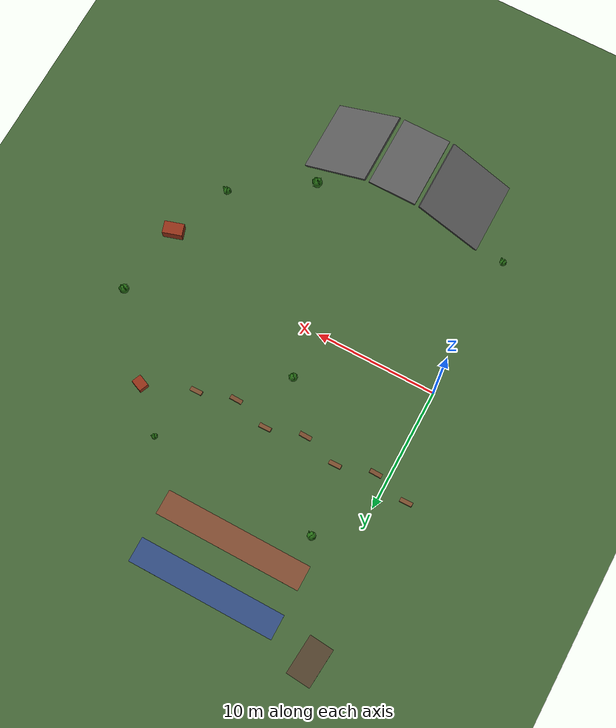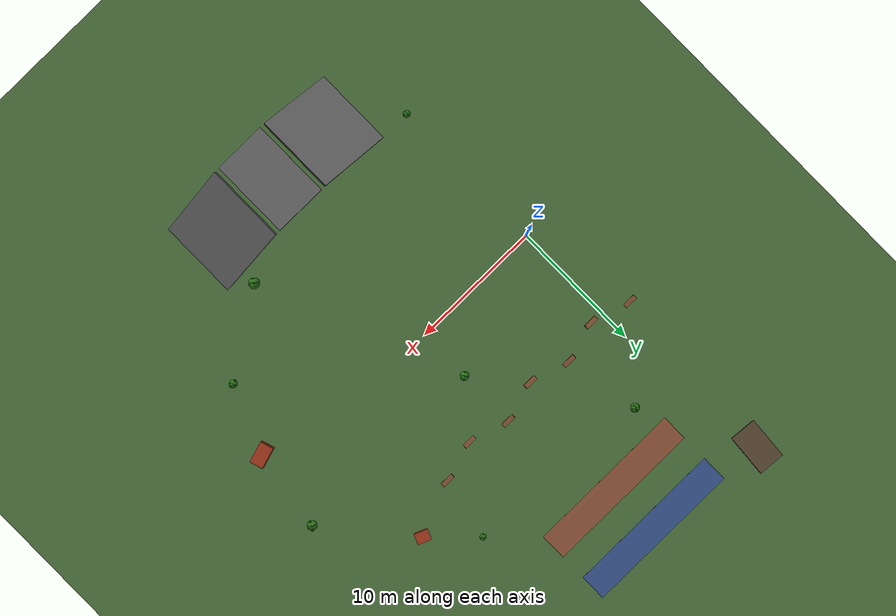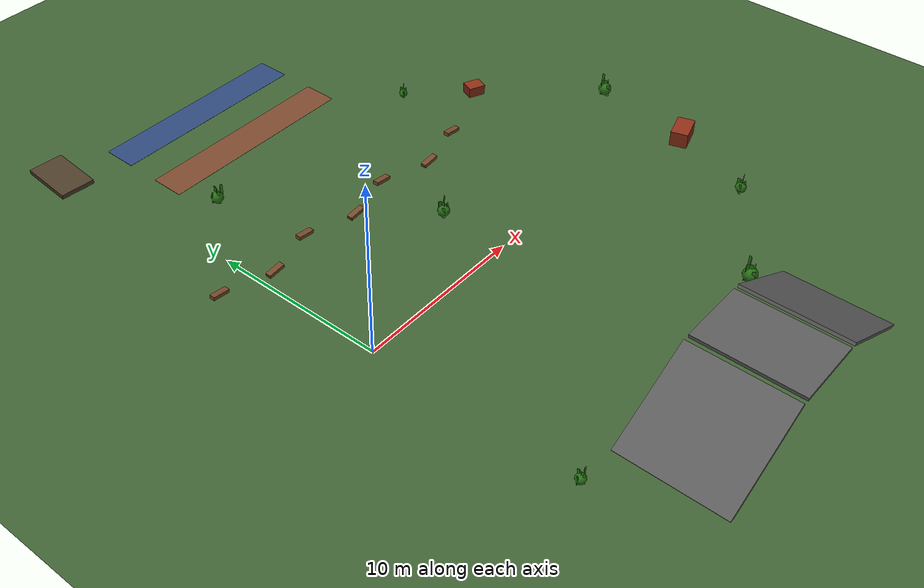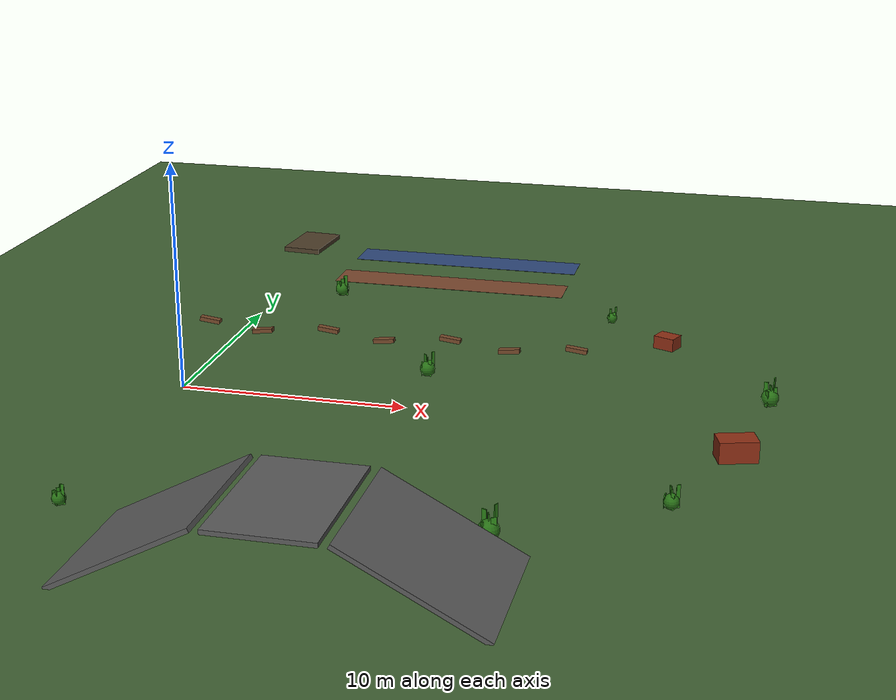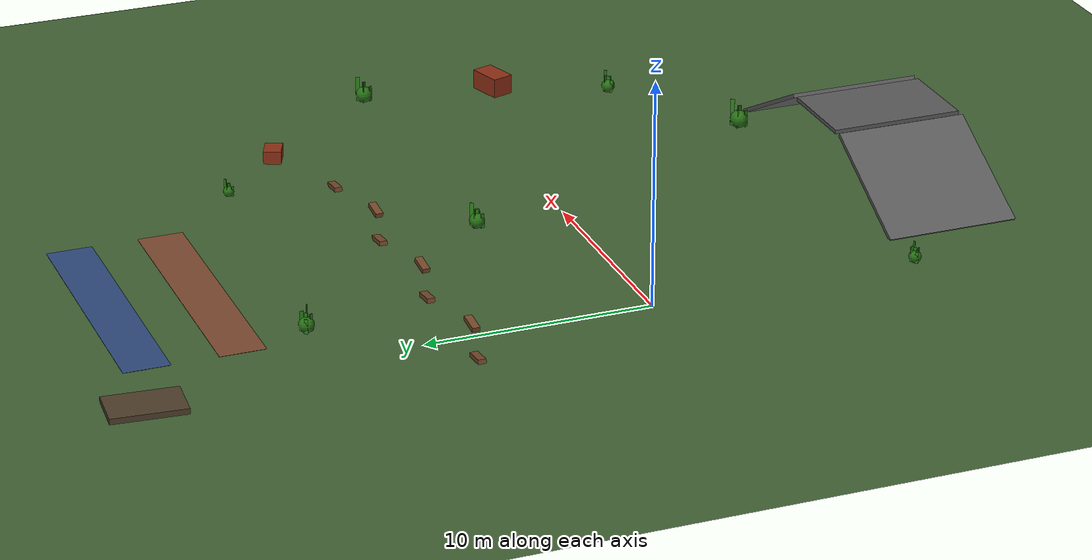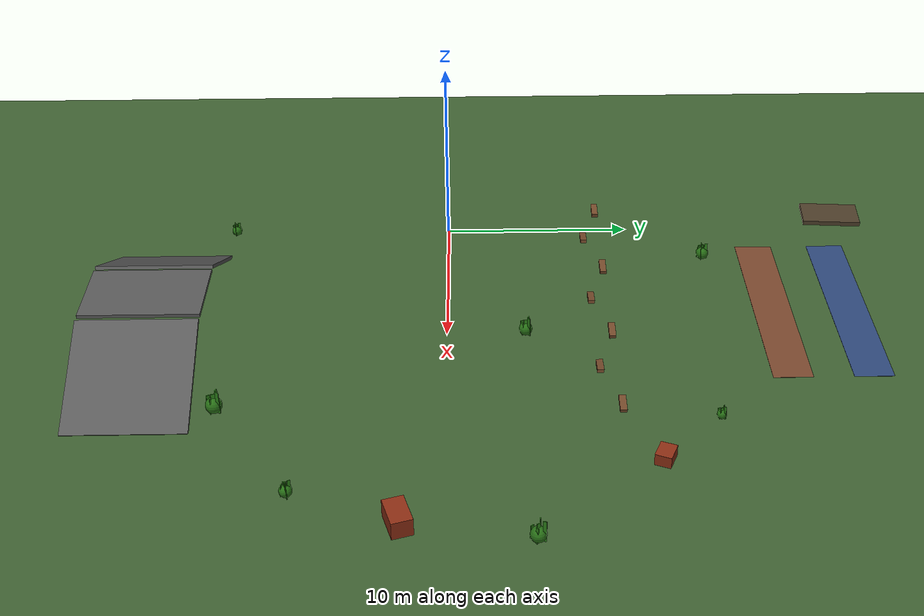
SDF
<sdf version="1.9">
 <world name="rollover_v2">
  <model name="ground">
   <static>true</static>
   <link name="link">
    <collision name="collision">
     <geometry><plane><normal>0 0 1</normal><size>80 60</size></plane></geometry>
     <surface><friction><ode><mu>.85</mu><mu2>.65</mu2></ode></friction></surface>
    </collision>
    <visual name="visual">
     <geometry><plane><normal>0 0 1</normal><size>80 60</size></plane></geometry>
     <material><ambient>.25 .38 .20 1</ambient><diffuse>.25 .38 .20 1</diffuse></material>
    </visual>
   </link>
  </model>
  <model name="mound_28deg_up">
   <static>true</static>
   <pose>5.0 -15.0 1.328949405000369 0 -0.4886921905584123 0</pose>
   <link name="link">
    <collision name="collision">
     <geometry><box><size>6 6 0.18</size></box></geometry>
     <surface><friction><ode><mu>0.9</mu><mu2>0.7</mu2></ode></friction></surface>
    </collision>
    <visual name="visual">
     <geometry><box><size>6 6 0.18</size></box></geometry>
     <material><ambient>0.35 0.35 0.35 1</ambient><diffuse>0.35 0.35 0.35 1</diffuse></material>
    </visual>
   </link>
  </model>
  <model name="mound_28deg_top">
   <static>true</static>
   <pose>10 -15 2.726829376715345 0 0 0</pose>
   <link name="link">
    <collision name="collision">
     <geometry><box><size>4 6 0.18</size></box></geometry>
     <surface><friction><ode><mu>0.9</mu><mu2>0.7</mu2></ode></friction></surface>
    </collision>
    <visual name="visual">
     <geometry><box><size>4 6 0.18</size></box></geometry>
     <material><ambient>0.35 0.35 0.35 1</ambient><diffuse>0.35 0.35 0.35 1</diffuse></material>
    </visual>
   </link>
  </model>
  <model name="mound_28deg_down">
   <static>true</static>
   <pose>15.0 -15.0 1.328949405000369 0 0.4886921905584123 0</pose>
   <link name="link">
    <collision name="collision">
     <geometry><box><size>6 6 0.18</size></box></geometry>
     <surface><friction><ode><mu>0.9</mu><mu2>0.7</mu2></ode></friction></surface>
    </collision>
    <visual name="visual">
     <geometry><box><size>6 6 0.18</size></box></geometry>
     <material><ambient>0.35 0.35 0.35 1</ambient><diffuse>0.35 0.35 0.35 1</diffuse></material>
    </visual>
   </link>
  </model>
  <model name="one_track_bump_0">
   <static>true</static>
   <pose>-2 8.43 0.1 0 0.12 0</pose>
   <link name="link">
    <collision name="collision">
     <geometry><box><size>1.0 0.34 0.2</size></box></geometry>
     <surface><friction><ode><mu>0.9</mu><mu2>0.7</mu2></ode></friction></surface>
    </collision>
    <visual name="visual">
     <geometry><box><size>1.0 0.34 0.2</size></box></geometry>
     <material><ambient>0.45 0.28 0.16 1</ambient><diffuse>0.45 0.28 0.16 1</diffuse></material>
    </visual>
   </link>
  </model>
  <model name="one_track_bump_1">
   <static>true</static>
   <pose>1 7.57 0.1 0 -0.12 0</pose>
   <link name="link">
    <collision name="collision">
     <geometry><box><size>1.0 0.34 0.2</size></box></geometry>
     <surface><friction><ode><mu>0.9</mu><mu2>0.7</mu2></ode></friction></surface>
    </collision>
    <visual name="visual">
     <geometry><box><size>1.0 0.34 0.2</size></box></geometry>
     <material><ambient>0.45 0.28 0.16 1</ambient><diffuse>0.45 0.28 0.16 1</diffuse></material>
    </visual>
   </link>
  </model>
  <model name="one_track_bump_2">
   <static>true</static>
   <pose>4 8.43 0.1 0 0.12 0</pose>
   <link name="link">
    <collision name="collision">
     <geometry><box><size>1.0 0.34 0.2</size></box></geometry>
     <surface><friction><ode><mu>0.9</mu><mu2>0.7</mu2></ode></friction></surface>
    </collision>
    <visual name="visual">
     <geometry><box><size>1.0 0.34 0.2</size></box></geometry>
     <material><ambient>0.45 0.28 0.16 1</ambient><diffuse>0.45 0.28 0.16 1</diffuse></material>
    </visual>
   </link>
  </model>
  <model name="one_track_bump_3">
   <static>true</static>
   <pose>7 7.57 0.1 0 -0.12 0</pose>
   <link name="link">
    <collision name="collision">
     <geometry><box><size>1.0 0.34 0.2</size></box></geometry>
     <surface><friction><ode><mu>0.9</mu><mu2>0.7</mu2></ode></friction></surface>
    </collision>
    <visual name="visual">
     <geometry><box><size>1.0 0.34 0.2</size></box></geometry>
     <material><ambient>0.45 0.28 0.16 1</ambient><diffuse>0.45 0.28 0.16 1</diffuse></material>
    </visual>
   </link>
  </model>
  <model name="one_track_bump_4">
   <static>true</static>
   <pose>10 8.43 0.1 0 0.12 0</pose>
   <link name="link">
    <collision name="collision">
     <geometry><box><size>1.0 0.34 0.2</size></box></geometry>
     <surface><friction><ode><mu>0.9</mu><mu2>0.7</mu2></ode></friction></surface>
    </collision>
    <visual name="visual">
     <geometry><box><size>1.0 0.34 0.2</size></box></geometry>
     <material><ambient>0.45 0.28 0.16 1</ambient><diffuse>0.45 0.28 0.16 1</diffuse></material>
    </visual>
   </link>
  </model>
  <model name="one_track_bump_5">
   <static>true</static>
   <pose>13 7.57 0.1 0 -0.12 0</pose>
   <link name="link">
    <collision name="collision">
     <geometry><box><size>1.0 0.34 0.2</size></box></geometry>
     <surface><friction><ode><mu>0.9</mu><mu2>0.7</mu2></ode></friction></surface>
    </collision>
    <visual name="visual">
     <geometry><box><size>1.0 0.34 0.2</size></box></geometry>
     <material><ambient>0.45 0.28 0.16 1</ambient><diffuse>0.45 0.28 0.16 1</diffuse></material>
    </visual>
   </link>
  </model>
  <model name="one_track_bump_6">
   <static>true</static>
   <pose>16 8.43 0.1 0 0.12 0</pose>
   <link name="link">
    <collision name="collision">
     <geometry><box><size>1.0 0.34 0.2</size></box></geometry>
     <surface><friction><ode><mu>0.9</mu><mu2>0.7</mu2></ode></friction></surface>
    </collision>
    <visual name="visual">
     <geometry><box><size>1.0 0.34 0.2</size></box></geometry>
     <material><ambient>0.45 0.28 0.16 1</ambient><diffuse>0.45 0.28 0.16 1</diffuse></material>
    </visual>
   </link>
  </model>
  <model name="rough_patch_7">
   <static>true</static>
   <pose>-1.1999999999999993 22 0.125 0 0 -0.08</pose>
   <link name="link">
    <collision name="collision">
     <geometry><box><size>2.0 3.2 0.25</size></box></geometry>
     <surface><friction><ode><mu>0.9</mu><mu2>0.7</mu2></ode></friction></surface>
    </collision>
    <visual name="visual">
     <geometry><box><size>2.0 3.2 0.25</size></box></geometry>
     <material><ambient>0.30 0.24 0.16 1</ambient><diffuse>0.30 0.24 0.16 1</diffuse></material>
    </visual>
   </link>
  </model>
  <model name="low_friction_left">
   <static>true</static>
   <pose>8 21 0.006 0 0 0</pose>
   <link name="link">
    <collision name="collision">
     <geometry><box><size>12 2.0 0.012</size></box></geometry>
     <surface><friction><ode><mu>0.2</mu><mu2>0.15</mu2></ode></friction></surface>
    </collision>
    <visual name="visual">
     <geometry><box><size>12 2.0 0.012</size></box></geometry>
     <material><ambient>0.18 0.28 0.48 1</ambient><diffuse>0.18 0.28 0.48 1</diffuse></material>
    </visual>
   </link>
  </model>
  <model name="high_friction_right">
   <static>true</static>
   <pose>8 17 0.006 0 0 0</pose>
   <link name="link">
    <collision name="collision">
     <geometry><box><size>12 2.0 0.012</size></box></geometry>
     <surface><friction><ode><mu>1.2</mu><mu2>0.9</mu2></ode></friction></surface>
    </collision>
    <visual name="visual">
     <geometry><box><size>12 2.0 0.012</size></box></geometry>
     <material><ambient>0.48 0.28 0.18 1</ambient><diffuse>0.48 0.28 0.18 1</diffuse></material>
    </visual>
   </link>
  </model>
  <model name="concrete_block">
   <static>true</static>
   <pose>24 -2 0.45 0 0 0.3</pose>
   <link name="link">
    <collision name="collision">
     <geometry><box><size>1.6 1.0 0.9</size></box></geometry>
     <surface><friction><ode><mu>0.9</mu><mu2>0.7</mu2></ode></friction></surface>
    </collision>
    <visual name="visual">
     <geometry><box><size>1.6 1.0 0.9</size></box></geometry>
     <material><ambient>0.55 0.18 0.08 1</ambient><diffuse>0.55 0.18 0.08 1</diffuse></material>
    </visual>
   </link>
  </model>
  <model name="offset_block">
   <static>true</static>
   <pose>20 10 0.3 0 0 -0.4</pose>
   <link name="link">
    <collision name="collision">
     <geometry><box><size>1.0 0.8 0.6</size></box></geometry>
     <surface><friction><ode><mu>0.9</mu><mu2>0.7</mu2></ode></friction></surface>
    </collision>
    <visual name="visual">
     <geometry><box><size>1.0 0.8 0.6</size></box></geometry>
     <material><ambient>0.55 0.18 0.08 1</ambient><diffuse>0.55 0.18 0.08 1</diffuse></material>
    </visual>
   </link>
  </model>
  <model name="traversable_vegetation_4">
   <static>true</static>
   <pose>0 -12 0 0 0 -0.6</pose>
   <link name="vegetation_link">
    <visual name="blade_0">
     <pose>-0.2 -0.096 0.26 0 0.035 0.0</pose>
     <geometry><box><size>0.028000000000000004 0.128 0.52</size></box></geometry>
     <material><ambient>.12 .38 .07 1</ambient><diffuse>.18 .52 .10 1</diffuse></material>
    </visual>
    <visual name="blade_1">
     <pose>-0.064 0.144 0.36000000000000004 0 -0.05 0.73</pose>
     <geometry><box><size>0.028000000000000004 0.128 0.7200000000000001</size></box></geometry>
     <material><ambient>.12 .38 .07 1</ambient><diffuse>.18 .52 .10 1</diffuse></material>
    </visual>
    <visual name="blade_2">
     <pose>0.08000000000000002 -0.144 0.30000000000000004 0 0.07 1.46</pose>
     <geometry><box><size>0.028000000000000004 0.128 0.6000000000000001</size></box></geometry>
     <material><ambient>.12 .38 .07 1</ambient><diffuse>.18 .52 .10 1</diffuse></material>
    </visual>
    <visual name="blade_3">
     <pose>0.192 0.08000000000000002 0.42000000000000004 0 -0.03 2.19</pose>
     <geometry><box><size>0.028000000000000004 0.128 0.8400000000000001</size></box></geometry>
     <material><ambient>.12 .38 .07 1</ambient><diffuse>.18 .52 .10 1</diffuse></material>
    </visual>
    <visual name="blade_4">
     <pose>0.0 0.0 0.328 0 0.02 2.92</pose>
     <geometry><box><size>0.028000000000000004 0.128 0.656</size></box></geometry>
     <material><ambient>.12 .38 .07 1</ambient><diffuse>.18 .52 .10 1</diffuse></material>
    </visual>
    <visual name="bush_core">
     <pose>0 0 0.22400000000000003 0 0 0</pose>
     <geometry><sphere><radius>0.272</radius></sphere></geometry>
     <material><ambient>.10 .30 .06 1</ambient><diffuse>.15 .43 .08 1</diffuse></material>
    </visual>
   </link>
  </model>
  <model name="traversable_vegetation_5">
   <static>true</static>
   <pose>16 -11 0 0 0 0.5</pose>
   <link name="vegetation_link">
    <visual name="blade_0">
     <pose>-0.3 -0.144 0.39 0 0.035 0.0</pose>
     <geometry><box><size>0.042 0.192 0.78</size></box></geometry>
     <material><ambient>.12 .38 .07 1</ambient><diffuse>.18 .52 .10 1</diffuse></material>
    </visual>
    <visual name="blade_1">
     <pose>-0.096 0.216 0.54 0 -0.05 0.73</pose>
     <geometry><box><size>0.042 0.192 1.08</size></box></geometry>
     <material><ambient>.12 .38 .07 1</ambient><diffuse>.18 .52 .10 1</diffuse></material>
    </visual>
    <visual name="blade_2">
     <pose>0.12 -0.216 0.44999999999999996 0 0.07 1.46</pose>
     <geometry><box><size>0.042 0.192 0.8999999999999999</size></box></geometry>
     <material><ambient>.12 .38 .07 1</ambient><diffuse>.18 .52 .10 1</diffuse></material>
    </visual>
    <visual name="blade_3">
     <pose>0.288 0.12 0.63 0 -0.03 2.19</pose>
     <geometry><box><size>0.042 0.192 1.26</size></box></geometry>
     <material><ambient>.12 .38 .07 1</ambient><diffuse>.18 .52 .10 1</diffuse></material>
    </visual>
    <visual name="blade_4">
     <pose>0.0 0.0 0.49199999999999994 0 0.02 2.92</pose>
     <geometry><box><size>0.042 0.192 0.9839999999999999</size></box></geometry>
     <material><ambient>.12 .38 .07 1</ambient><diffuse>.18 .52 .10 1</diffuse></material>
    </visual>
    <visual name="bush_core">
     <pose>0 0 0.336 0 0 0</pose>
     <geometry><sphere><radius>0.40800000000000003</radius></sphere></geometry>
     <material><ambient>.10 .30 .06 1</ambient><diffuse>.15 .43 .08 1</diffuse></material>
    </visual>
   </link>
  </model>
  <model name="traversable_vegetation_6">
   <static>true</static>
   <pose>22 -7 0 0 0 -0.2</pose>
   <link name="vegetation_link">
    <visual name="blade_0">
     <pose>-0.225 -0.108 0.29250000000000004 0 0.035 0.0</pose>
     <geometry><box><size>0.03150000000000001 0.14400000000000002 0.5850000000000001</size></box></geometry>
     <material><ambient>.12 .38 .07 1</ambient><diffuse>.18 .52 .10 1</diffuse></material>
    </visual>
    <visual name="blade_1">
     <pose>-0.07200000000000001 0.162 0.405 0 -0.05 0.73</pose>
     <geometry><box><size>0.03150000000000001 0.14400000000000002 0.81</size></box></geometry>
     <material><ambient>.12 .38 .07 1</ambient><diffuse>.18 .52 .10 1</diffuse></material>
    </visual>
    <visual name="blade_2">
     <pose>0.09000000000000001 -0.162 0.3375 0 0.07 1.46</pose>
     <geometry><box><size>0.03150000000000001 0.14400000000000002 0.675</size></box></geometry>
     <material><ambient>.12 .38 .07 1</ambient><diffuse>.18 .52 .10 1</diffuse></material>
    </visual>
    <visual name="blade_3">
     <pose>0.216 0.09000000000000001 0.47250000000000003 0 -0.03 2.19</pose>
     <geometry><box><size>0.03150000000000001 0.14400000000000002 0.9450000000000001</size></box></geometry>
     <material><ambient>.12 .38 .07 1</ambient><diffuse>.18 .52 .10 1</diffuse></material>
    </visual>
    <visual name="blade_4">
     <pose>0.0 0.0 0.369 0 0.02 2.92</pose>
     <geometry><box><size>0.03150000000000001 0.14400000000000002 0.738</size></box></geometry>
     <material><ambient>.12 .38 .07 1</ambient><diffuse>.18 .52 .10 1</diffuse></material>
    </visual>
    <visual name="bush_core">
     <pose>0 0 0.25200000000000006 0 0 0</pose>
     <geometry><sphere><radius>0.30600000000000005</radius></sphere></geometry>
     <material><ambient>.10 .30 .06 1</ambient><diffuse>.15 .43 .08 1</diffuse></material>
    </visual>
   </link>
  </model>
  <model name="traversable_vegetation_7">
   <static>true</static>
   <pose>25 4 0 0 0 0.7</pose>
   <link name="vegetation_link">
    <visual name="blade_0">
     <pose>-0.275 -0.132 0.35750000000000004 0 0.035 0.0</pose>
     <geometry><box><size>0.038500000000000006 0.17600000000000002 0.7150000000000001</size></box></geometry>
     <material><ambient>.12 .38 .07 1</ambient><diffuse>.18 .52 .10 1</diffuse></material>
    </visual>
    <visual name="blade_1">
     <pose>-0.08800000000000001 0.198 0.49500000000000005 0 -0.05 0.73</pose>
     <geometry><box><size>0.038500000000000006 0.17600000000000002 0.9900000000000001</size></box></geometry>
     <material><ambient>.12 .38 .07 1</ambient><diffuse>.18 .52 .10 1</diffuse></material>
    </visual>
    <visual name="blade_2">
     <pose>0.11000000000000001 -0.198 0.41250000000000003 0 0.07 1.46</pose>
     <geometry><box><size>0.038500000000000006 0.17600000000000002 0.8250000000000001</size></box></geometry>
     <material><ambient>.12 .38 .07 1</ambient><diffuse>.18 .52 .10 1</diffuse></material>
    </visual>
    <visual name="blade_3">
     <pose>0.264 0.11000000000000001 0.5775000000000001 0 -0.03 2.19</pose>
     <geometry><box><size>0.038500000000000006 0.17600000000000002 1.1550000000000002</size></box></geometry>
     <material><ambient>.12 .38 .07 1</ambient><diffuse>.18 .52 .10 1</diffuse></material>
    </visual>
    <visual name="blade_4">
     <pose>0.0 0.0 0.451 0 0.02 2.92</pose>
     <geometry><box><size>0.038500000000000006 0.17600000000000002 0.902</size></box></geometry>
     <material><ambient>.12 .38 .07 1</ambient><diffuse>.18 .52 .10 1</diffuse></material>
    </visual>
    <visual name="bush_core">
     <pose>0 0 0.30800000000000005 0 0 0</pose>
     <geometry><sphere><radius>0.37400000000000005</radius></sphere></geometry>
     <material><ambient>.10 .30 .06 1</ambient><diffuse>.15 .43 .08 1</diffuse></material>
    </visual>
   </link>
  </model>
  <model name="traversable_vegetation_8">
   <static>true</static>
   <pose>17 13 0 0 0 0.3</pose>
   <link name="vegetation_link">
    <visual name="blade_0">
     <pose>-0.175 -0.08399999999999999 0.22749999999999998 0 0.035 0.0</pose>
     <geometry><box><size>0.0245 0.11199999999999999 0.45499999999999996</size></box></geometry>
     <material><ambient>.12 .38 .07 1</ambient><diffuse>.18 .52 .10 1</diffuse></material>
    </visual>
    <visual name="blade_1">
     <pose>-0.055999999999999994 0.126 0.315 0 -0.05 0.73</pose>
     <geometry><box><size>0.0245 0.11199999999999999 0.63</size></box></geometry>
     <material><ambient>.12 .38 .07 1</ambient><diffuse>.18 .52 .10 1</diffuse></material>
    </visual>
    <visual name="blade_2">
     <pose>0.06999999999999999 -0.126 0.26249999999999996 0 0.07 1.46</pose>
     <geometry><box><size>0.0245 0.11199999999999999 0.5249999999999999</size></box></geometry>
     <material><ambient>.12 .38 .07 1</ambient><diffuse>.18 .52 .10 1</diffuse></material>
    </visual>
    <visual name="blade_3">
     <pose>0.16799999999999998 0.06999999999999999 0.3675 0 -0.03 2.19</pose>
     <geometry><box><size>0.0245 0.11199999999999999 0.735</size></box></geometry>
     <material><ambient>.12 .38 .07 1</ambient><diffuse>.18 .52 .10 1</diffuse></material>
    </visual>
    <visual name="blade_4">
     <pose>0.0 0.0 0.287 0 0.02 2.92</pose>
     <geometry><box><size>0.0245 0.11199999999999999 0.574</size></box></geometry>
     <material><ambient>.12 .38 .07 1</ambient><diffuse>.18 .52 .10 1</diffuse></material>
    </visual>
    <visual name="bush_core">
     <pose>0 0 0.196 0 0 0</pose>
     <geometry><sphere><radius>0.238</radius></sphere></geometry>
     <material><ambient>.10 .30 .06 1</ambient><diffuse>.15 .43 .08 1</diffuse></material>
    </visual>
   </link>
  </model>
  <model name="traversable_vegetation_9">
   <static>true</static>
   <pose>3 14 0 0 0 -0.8</pose>
   <link name="vegetation_link">
    <visual name="blade_0">
     <pose>-0.25 -0.12 0.325 0 0.035 0.0</pose>
     <geometry><box><size>0.035 0.16 0.65</size></box></geometry>
     <material><ambient>.12 .38 .07 1</ambient><diffuse>.18 .52 .10 1</diffuse></material>
    </visual>
    <visual name="blade_1">
     <pose>-0.08 0.18 0.45 0 -0.05 0.73</pose>
     <geometry><box><size>0.035 0.16 0.9</size></box></geometry>
     <material><ambient>.12 .38 .07 1</ambient><diffuse>.18 .52 .10 1</diffuse></material>
    </visual>
    <visual name="blade_2">
     <pose>0.1 -0.18 0.375 0 0.07 1.46</pose>
     <geometry><box><size>0.035 0.16 0.75</size></box></geometry>
     <material><ambient>.12 .38 .07 1</ambient><diffuse>.18 .52 .10 1</diffuse></material>
    </visual>
    <visual name="blade_3">
     <pose>0.24 0.1 0.525 0 -0.03 2.19</pose>
     <geometry><box><size>0.035 0.16 1.05</size></box></geometry>
     <material><ambient>.12 .38 .07 1</ambient><diffuse>.18 .52 .10 1</diffuse></material>
    </visual>
    <visual name="blade_4">
     <pose>0.0 0.0 0.41 0 0.02 2.92</pose>
     <geometry><box><size>0.035 0.16 0.82</size></box></geometry>
     <material><ambient>.12 .38 .07 1</ambient><diffuse>.18 .52 .10 1</diffuse></material>
    </visual>
    <visual name="bush_core">
     <pose>0 0 0.28 0 0 0</pose>
     <geometry><sphere><radius>0.34</radius></sphere></geometry>
     <material><ambient>.10 .30 .06 1</ambient><diffuse>.15 .43 .08 1</diffuse></material>
    </visual>
   </link>
  </model>
  <model name="traversable_vegetation_14">
   <static>true</static>
   <pose>10 4 0 0 0 0.25</pose>
   <link name="vegetation_link">
    <visual name="blade_0">
     <pose>-0.25 -0.12 0.325 0 0.035 0.0</pose>
     <geometry><box><size>0.035 0.16 0.65</size></box></geometry>
     <material><ambient>.12 .38 .07 1</ambient><diffuse>.18 .52 .10 1</diffuse></material>
    </visual>
    <visual name="blade_1">
     <pose>-0.08 0.18 0.45 0 -0.05 0.73</pose>
     <geometry><box><size>0.035 0.16 0.9</size></box></geometry>
     <material><ambient>.12 .38 .07 1</ambient><diffuse>.18 .52 .10 1</diffuse></material>
    </visual>
    <visual name="blade_2">
     <pose>0.1 -0.18 0.375 0 0.07 1.46</pose>
     <geometry><box><size>0.035 0.16 0.75</size></box></geometry>
     <material><ambient>.12 .38 .07 1</ambient><diffuse>.18 .52 .10 1</diffuse></material>
    </visual>
    <visual name="blade_3">
     <pose>0.24 0.1 0.525 0 -0.03 2.19</pose>
     <geometry><box><size>0.035 0.16 1.05</size></box></geometry>
     <material><ambient>.12 .38 .07 1</ambient><diffuse>.18 .52 .10 1</diffuse></material>
    </visual>
    <visual name="blade_4">
     <pose>0.0 0.0 0.41 0 0.02 2.92</pose>
     <geometry><box><size>0.035 0.16 0.82</size></box></geometry>
     <material><ambient>.12 .38 .07 1</ambient><diffuse>.18 .52 .10 1</diffuse></material>
    </visual>
    <visual name="bush_core">
     <pose>0 0 0.28 0 0 0</pose>
     <geometry><sphere><radius>0.34</radius></sphere></geometry>
     <material><ambient>.10 .30 .06 1</ambient><diffuse>.15 .43 .08 1</diffuse></material>
    </visual>
   </link>
  </model>
 </world>
</sdf>
